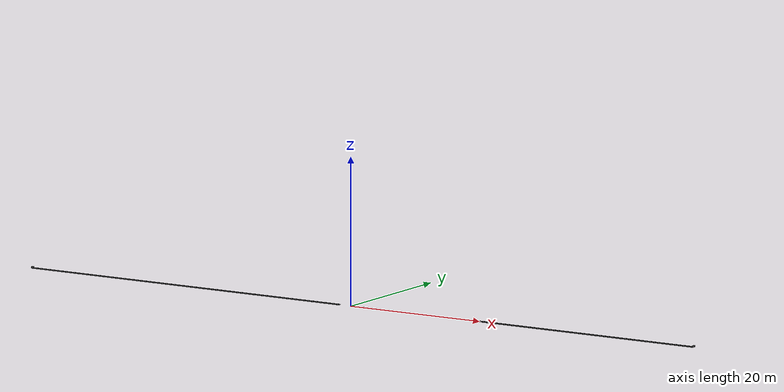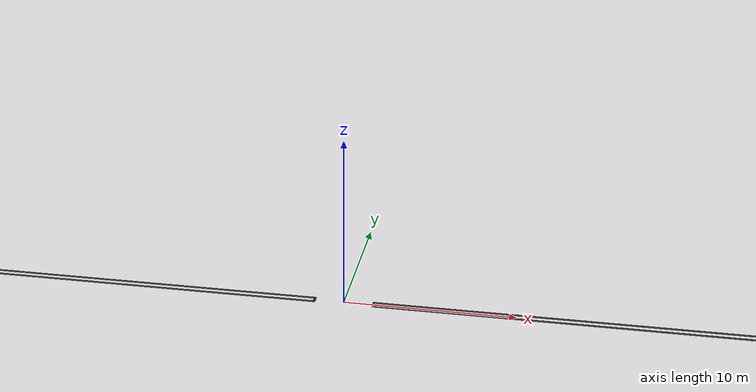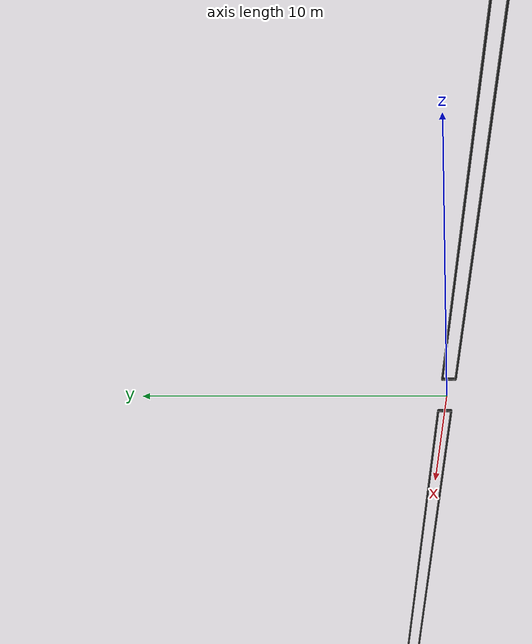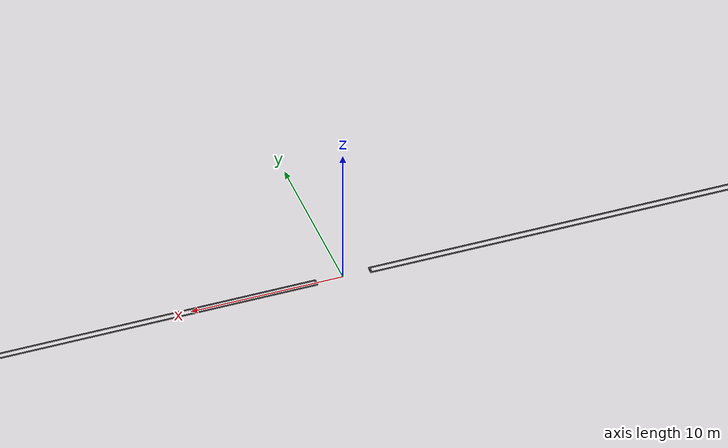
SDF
<sdf version='1.7'>
  <model name='rails'>
    <joint name='rails_joint' type='fixed'>
      <pose relative_to='__model__'>0 0 0.0325 0 -0 0</pose>
      <parent>world</parent>
      <child>rails</child>
    </joint>
    <link name='rails'>
      <pose relative_to='rails_joint'>0 0 0 0 -0 0</pose>
      <inertial>
        <pose>26.75 0 0 0 -0 0</pose>
        <mass>10000</mass>
        <inertia>
          <ixx>1e+06</ixx>
          <ixy>0</ixy>
          <ixz>0</ixz>
          <iyy>1e+06</iyy>
          <iyz>0</iyz>
          <izz>1e+06</izz>
        </inertia>
      </inertial>
      <collision name='rails_collision'>
        <pose>1.75 0.185 0 0 -0 0</pose>
        <geometry>
          <cylinder>
            <length>0.065</length>
            <radius>0.065</radius>
          </cylinder>
        </geometry>
        <surface>
          <contact>
            <ode/>
          </contact>
          <friction>
            <ode>
              <mu>1e-06</mu>
              <mu2>1e-06</mu2>
            </ode>
          </friction>
        </surface>
      </collision>
      <collision name='rails_collision_1'>
        <pose>1.75 -0.185 0 0 -0 0</pose>
        <geometry>
          <cylinder>
            <length>0.065</length>
            <radius>0.065</radius>
          </cylinder>
        </geometry>
        <surface>
          <contact>
            <ode/>
          </contact>
          <friction>
            <ode>
              <mu>1e-06</mu>
              <mu2>1e-06</mu2>
            </ode>
          </friction>
        </surface>
      </collision>
      <collision name='rails_collision_2'>
        <pose>51.8 0 0.0925 0 -0 0</pose>
        <geometry>
          <box>
            <size>0.1 0.5 0.25</size>
          </box>
        </geometry>
        <surface>
          <contact>
            <ode/>
          </contact>
          <friction>
            <ode>
              <mu>1e-06</mu>
              <mu2>1e-06</mu2>
            </ode>
          </friction>
        </surface>
      </collision>
      <collision name='rails_collision_3'>
        <pose>26.75 0 0 0 -0 0</pose>
        <geometry>
          <box>
            <size>50 0.5 0.065</size>
          </box>
        </geometry>
        <surface>
          <contact>
            <ode/>
          </contact>
          <friction>
            <ode>
              <mu>1e-06</mu>
              <mu2>1e-06</mu2>
            </ode>
          </friction>
        </surface>
      </collision>
      <collision name='rails_collision_4'>
        <pose>1.75 0 0 0 -0 0</pose>
        <geometry>
          <box>
            <size>0.13 0.37 0.065</size>
          </box>
        </geometry>
        <surface>
          <contact>
            <ode/>
          </contact>
          <friction>
            <ode>
              <mu>1e-06</mu>
              <mu2>1e-06</mu2>
            </ode>
          </friction>
        </surface>
      </collision>
      <collision name='rails_collision_5'>
        <pose>-1.75 0.185 0 0 -0 0</pose>
        <geometry>
          <cylinder>
            <length>0.065</length>
            <radius>0.065</radius>
          </cylinder>
        </geometry>
        <surface>
          <contact>
            <ode/>
          </contact>
          <friction>
            <ode>
              <mu>1e-06</mu>
              <mu2>1e-06</mu2>
            </ode>
          </friction>
        </surface>
      </collision>
      <collision name='rails_collision_6'>
        <pose>-1.75 -0.185 0 0 -0 0</pose>
        <geometry>
          <cylinder>
            <length>0.065</length>
            <radius>0.065</radius>
          </cylinder>
        </geometry>
        <surface>
          <contact>
            <ode/>
          </contact>
          <friction>
            <ode>
              <mu>1e-06</mu>
              <mu2>1e-06</mu2>
            </ode>
          </friction>
        </surface>
      </collision>
      <collision name='rails_collision_7'>
        <pose>-51.8 0 0.0925 0 -0 0</pose>
        <geometry>
          <box>
            <size>0.1 0.5 0.25</size>
          </box>
        </geometry>
        <surface>
          <contact>
            <ode/>
          </contact>
          <friction>
            <ode>
              <mu>1e-06</mu>
              <mu2>1e-06</mu2>
            </ode>
          </friction>
        </surface>
      </collision>
      <collision name='rails_collision_8'>
        <pose>-26.75 0 0 0 -0 0</pose>
        <geometry>
          <box>
            <size>50 0.5 0.065</size>
          </box>
        </geometry>
        <surface>
          <contact>
            <ode/>
          </contact>
          <friction>
            <ode>
              <mu>1e-06</mu>
              <mu2>1e-06</mu2>
            </ode>
          </friction>
        </surface>
      </collision>
      <collision name='rails_collision_9'>
        <pose>-1.75 0 0 0 -0 0</pose>
        <geometry>
          <box>
            <size>0.13 0.37 0.065</size>
          </box>
        </geometry>
        <surface>
          <contact>
            <ode/>
          </contact>
          <friction>
            <ode>
              <mu>1e-06</mu>
              <mu2>1e-06</mu2>
            </ode>
          </friction>
        </surface>
      </collision>
      <visual name='rails_visual'>
        <pose>26.75 0.2175 0 0 -0 0</pose>
        <geometry>
          <box>
            <size>50 0.065 0.065</size>
          </box>
        </geometry>
        <material>
          <script>
            <name>Gazebo/FlatBlack</name>
            <uri>file://media/materials/scripts/gazebo.material</uri>
          </script>
        </material>
      </visual>
      <visual name='rails_visual_1'>
        <pose>26.75 -0.2175 0 0 -0 0</pose>
        <geometry>
          <box>
            <size>50 0.065 0.065</size>
          </box>
        </geometry>
        <material>
          <script>
            <name>Gazebo/FlatBlack</name>
            <uri>file://media/materials/scripts/gazebo.material</uri>
          </script>
        </material>
      </visual>
      <visual name='rails_visual_2'>
        <pose>1.75 0 0 0 -0 0</pose>
        <geometry>
          <box>
            <size>0.13 0.37 0.065</size>
          </box>
        </geometry>
        <material>
          <script>
            <name>Gazebo/FlatBlack</name>
            <uri>file://media/materials/scripts/gazebo.material</uri>
          </script>
        </material>
      </visual>
      <visual name='rails_visual_3'>
        <pose>1.75 0.185 0 0 -0 0</pose>
        <geometry>
          <cylinder>
            <length>0.065</length>
            <radius>0.065</radius>
          </cylinder>
        </geometry>
        <material>
          <script>
            <name>Gazebo/FlatBlack</name>
            <uri>file://media/materials/scripts/gazebo.material</uri>
          </script>
        </material>
      </visual>
      <visual name='rails_visual_4'>
        <pose>1.75 -0.185 0 0 -0 0</pose>
        <geometry>
          <cylinder>
            <length>0.065</length>
            <radius>0.065</radius>
          </cylinder>
        </geometry>
        <material>
          <script>
            <name>Gazebo/FlatBlack</name>
            <uri>file://media/materials/scripts/gazebo.material</uri>
          </script>
        </material>
      </visual>
      <visual name='rails_visual_5'>
        <pose>51.8 0 0.0925 0 -0 0</pose>
        <geometry>
          <box>
            <size>0.1 0.5 0.25</size>
          </box>
        </geometry>
        <material>
          <script>
            <name>Gazebo/FlatBlack</name>
            <uri>file://media/materials/scripts/gazebo.material</uri>
          </script>
        </material>
      </visual>
      <visual name='rails_visual_6'>
        <pose>-26.75 0.2175 0 0 -0 0</pose>
        <geometry>
          <box>
            <size>50 0.065 0.065</size>
          </box>
        </geometry>
        <material>
          <script>
            <name>Gazebo/FlatBlack</name>
            <uri>file://media/materials/scripts/gazebo.material</uri>
          </script>
        </material>
      </visual>
      <visual name='rails_visual_7'>
        <pose>-26.75 -0.2175 0 0 -0 0</pose>
        <geometry>
          <box>
            <size>50 0.065 0.065</size>
          </box>
        </geometry>
        <material>
          <script>
            <name>Gazebo/FlatBlack</name>
            <uri>file://media/materials/scripts/gazebo.material</uri>
          </script>
        </material>
      </visual>
      <visual name='rails_visual_8'>
        <pose>-1.75 0 0 0 -0 0</pose>
        <geometry>
          <box>
            <size>0.13 0.37 0.065</size>
          </box>
        </geometry>
        <material>
          <script>
            <name>Gazebo/FlatBlack</name>
            <uri>file://media/materials/scripts/gazebo.material</uri>
          </script>
        </material>
      </visual>
      <visual name='rails_visual_9'>
        <pose>-1.75 0.185 0 0 -0 0</pose>
        <geometry>
          <cylinder>
            <length>0.065</length>
            <radius>0.065</radius>
          </cylinder>
        </geometry>
        <material>
          <script>
            <name>Gazebo/FlatBlack</name>
            <uri>file://media/materials/scripts/gazebo.material</uri>
          </script>
        </material>
      </visual>
      <visual name='rails_visual_10'>
        <pose>-1.75 -0.185 0 0 -0 0</pose>
        <geometry>
          <cylinder>
            <length>0.065</length>
            <radius>0.065</radius>
          </cylinder>
        </geometry>
        <material>
          <script>
            <name>Gazebo/FlatBlack</name>
            <uri>file://media/materials/scripts/gazebo.material</uri>
          </script>
        </material>
      </visual>
      <visual name='rails_visual_11'>
        <pose>-51.8 0 0.0925 0 -0 0</pose>
        <geometry>
          <box>
            <size>0.1 0.5 0.25</size>
          </box>
        </geometry>
        <material>
          <script>
            <name>Gazebo/FlatBlack</name>
            <uri>file://media/materials/scripts/gazebo.material</uri>
          </script>
        </material>
      </visual>
    </link>
  </model>
</sdf>
